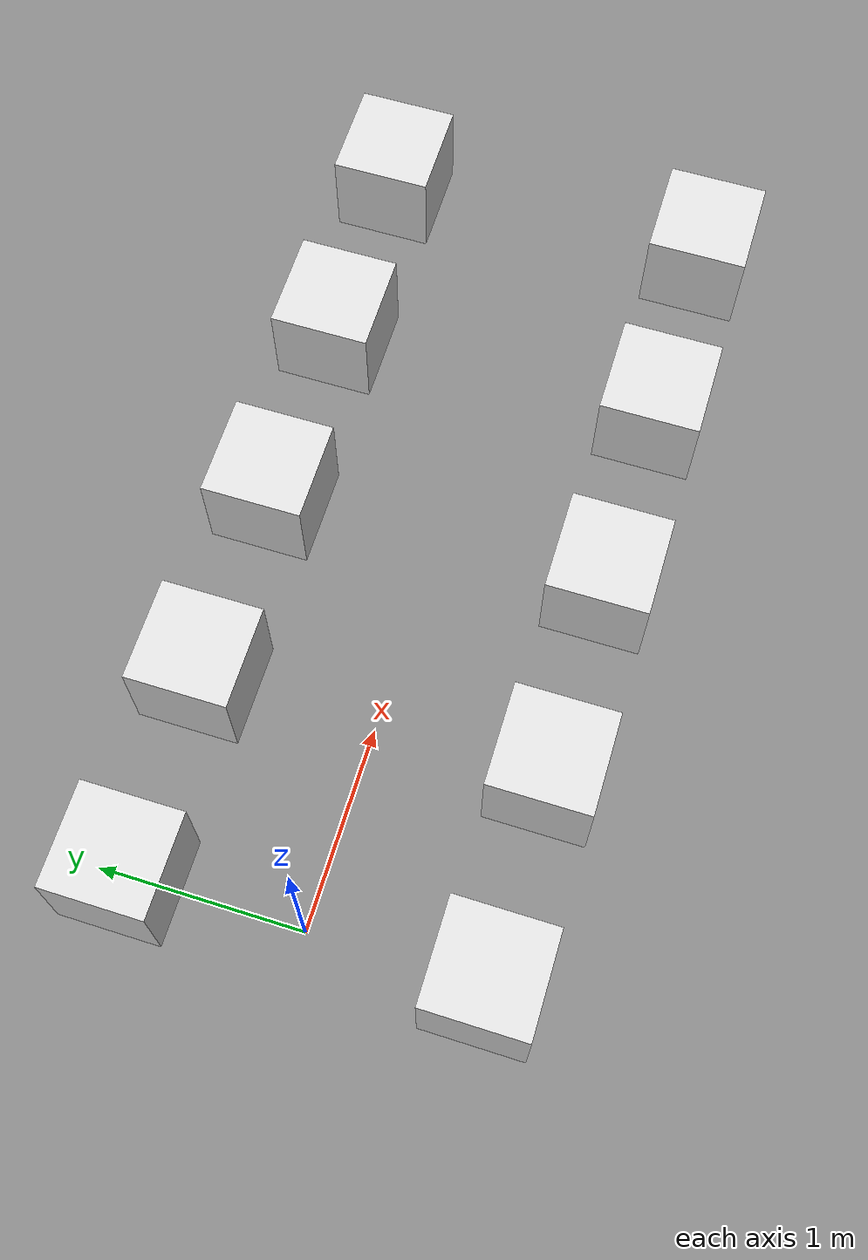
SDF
<?xml version="1.0" ?>
<sdf version="1.6">
  <model name="trap_c_3_n">
    <static>true</static>

    <include>
      <name>op_r</name>
      <uri>model://vis_cue_normal</uri>
      <pose>0 -0.85 0.25 0 0 0</pose>
    </include>
    <include>
      <name>op_l</name>
      <uri>model://vis_cue_normal</uri>
      <pose>0 0.85 0.25 0 0 0</pose>
    </include>
    <include>
      <name>normal_cue_2</name>
      <uri>model://vis_cue_normal</uri>
      <pose>1 -0.85 0.25 0 0 0</pose>
    </include>
    <include>
      <name>normal_cue_3</name>
      <uri>model://vis_cue_normal</uri>
      <pose>1 0.85 0.25 0 0 0</pose>
    </include>
    <include>
      <name>normal_cue_4</name>
      <uri>model://vis_cue_normal</uri>
      <pose>2 -0.85 0.25 0 0 0</pose>
    </include>
    <include>
      <name>normal_cue_5</name>
      <uri>model://vis_cue_normal</uri>
      <pose>2 0.85 0.25 0 0 0</pose>
    </include>
    <include>
      <name>normal_cue_6</name>
      <uri>model://vis_cue_normal</uri>
      <pose>3 -0.85 0.25 0 0 0</pose>
    </include>
    <include>
      <name>normal_cue_7</name>
      <uri>model://vis_cue_normal</uri>
      <pose>3 0.85 0.25 0 0 0</pose>
    </include>
    <include>
      <name>normal_cue_8</name>
      <uri>model://vis_cue_normal</uri>
      <pose>4 -0.85 0.25 0 0 0</pose>
    </include>
    <include>
      <name>normal_cue_9</name>
      <uri>model://vis_cue_normal</uri>
      <pose>4 0.85 0.25 0 0 0</pose>
    </include>

  </model>
</sdf>

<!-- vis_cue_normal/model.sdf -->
<sdf version="1.6">
  <model name="vis_cue_normal">
    <static>false</static>
    <pose>0 0 0.25 0 0 0</pose>
    <link name='vis_cue_normal'>
      <inertial>
        <mass>1</mass>
        <inertia>
          <ixx>0.166667</ixx>
          <ixy>0</ixy>
          <ixz>0</ixz>
          <iyy>0.166667</iyy>
          <iyz>0</iyz>
          <izz>0.166667</izz>
        </inertia>
      </inertial>
      <collision name='collision'>
        <geometry>
          <box>
            <size>0.5 0.5 0.5</size>
          </box>
        </geometry>
        <max_contacts>10</max_contacts>
        <surface>
          <contact>
            <ode/>
          </contact>
          <bounce/>
          <friction>
            <torsional>
              <ode/>
            </torsional>
            <ode/>
          </friction>
        </surface>
      </collision>
      <visual name='box_visual'>
        <geometry>
          <box>
            <size>0.5 0.5 0.5</size>
          </box>
        </geometry>
        <material>
          <ambient>0.85 0.85 0.85 1</ambient>
          <diffuse>0.85 0.85 0.85 1</diffuse>
          <specular>0.15 0.15 0.15 1</specular>
          <emissive>0 0 0 0</emissive>
        </material>
      </visual>
      <self_collide>0</self_collide>
      <kinematic>0</kinematic>
    </link>
  </model>
</sdf>
